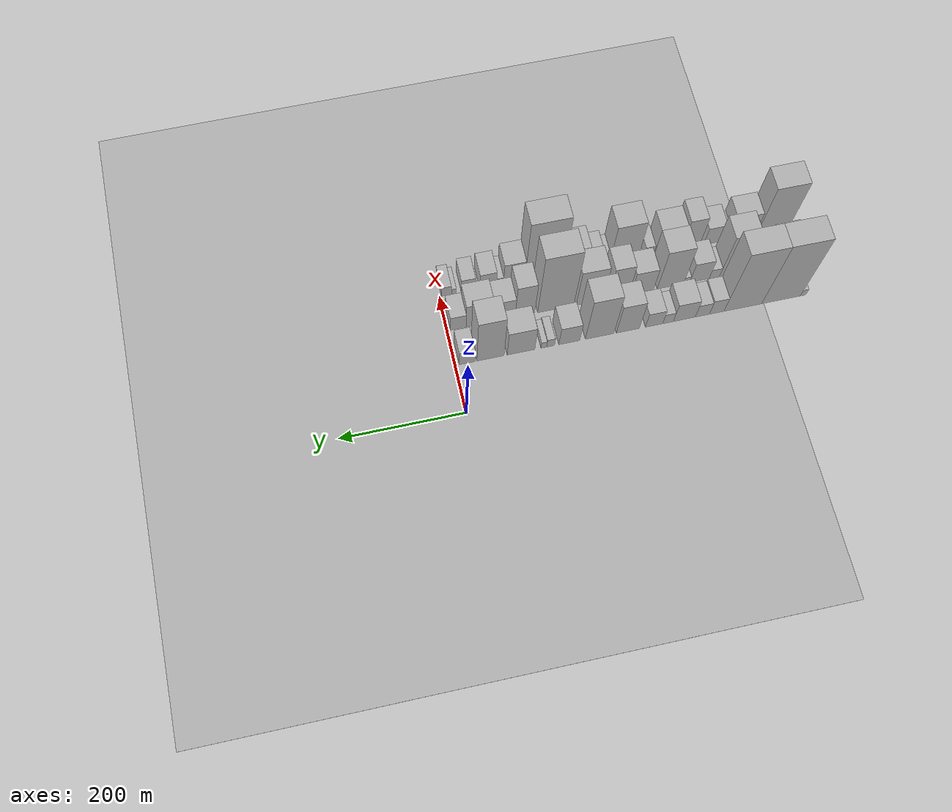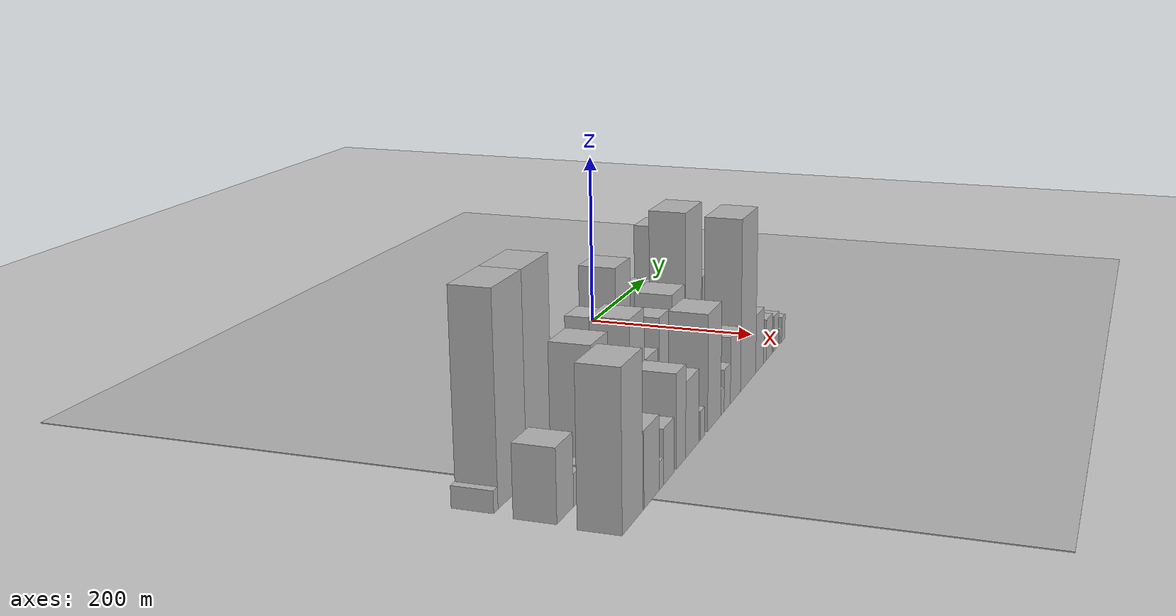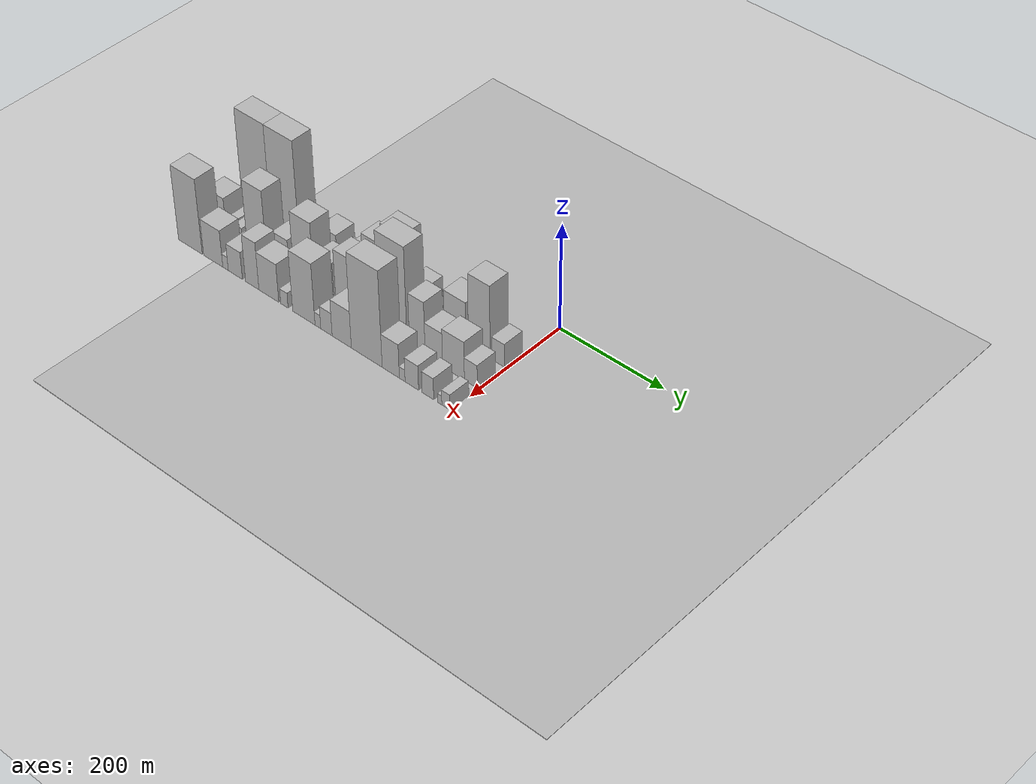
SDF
<sdf version="1.6">
 <world name="default">
  <include><name>ground_plane_1</name><uri>model://HANNAS_ground_plane</uri></include>
  <include>
   <name>ground_plane_2</name>
   <uri>model://HANNAS_ground_plane</uri>
   <pose>100 0 0  0 0 0</pose>
  </include>
  <model name="building_1">
   <static>1</static>
   <pose>100.0000 -565.3969 0 0.000000 0.000000 0.000000</pose>
   <link name="link">
    <pose>0 0 10.50 0 0 0</pose>
    <collision name="collision"><geometry><box><size>40.0000 9.2063 21.0000</size></box></geometry></collision>
    <visual name="visual">
     <cast_shadows>0</cast_shadows>
     <geometry><box><size>40.0000 9.2063 21.0000</size></box></geometry>
     <material>
      <script>
       <uri>model://HANNAS_wall/materials/scripts</uri>
       <uri>model://HANNAS_wall/materials/textures</uri>
       <name>vrc/HANNAS_wall</name>
      </script>
     </material>
    </visual>
   </link>
  </model>
  <model name="building_2">
   <static>1</static>
   <pose>100.0000 -528.7531 0 0.000000 0.000000 0.000000</pose>
   <link name="link">
    <pose>0 0 99.00 0 0 0</pose>
    <collision name="collision"><geometry><box><size>40.0000 64.0812 198.0000</size></box></geometry></collision>
    <visual name="visual">
     <cast_shadows>0</cast_shadows>
     <geometry><box><size>40.0000 64.0812 198.0000</size></box></geometry>
     <material>
      <script>
       <uri>model://HANNAS_wall/materials/scripts</uri>
       <uri>model://HANNAS_wall/materials/textures</uri>
       <name>vrc/HANNAS_wall</name>
      </script>
     </material>
    </visual>
   </link>
  </model>
  <model name="building_3">
   <static>1</static>
   <pose>100.0000 -465.5587 0 0.000000 0.000000 0.000000</pose>
   <link name="link">
    <pose>0 0 99.00 0 0 0</pose>
    <collision name="collision"><geometry><box><size>40.0000 62.3076 198.0000</size></box></geometry></collision>
    <visual name="visual">
     <cast_shadows>0</cast_shadows>
     <geometry><box><size>40.0000 62.3076 198.0000</size></box></geometry>
     <material>
      <script>
       <uri>model://HANNAS_wall/materials/scripts</uri>
       <uri>model://HANNAS_wall/materials/textures</uri>
       <name>vrc/HANNAS_wall</name>
      </script>
     </material>
    </visual>
   </link>
  </model>
  <model name="building_4">
   <static>1</static>
   <pose>100.0000 -422.2081 0 0.000000 0.000000 0.000000</pose>
   <link name="link">
    <pose>0 0 24.00 0 0 0</pose>
    <collision name="collision"><geometry><box><size>40.0000 24.3938 48.0000</size></box></geometry></collision>
    <visual name="visual">
     <cast_shadows>0</cast_shadows>
     <geometry><box><size>40.0000 24.3938 48.0000</size></box></geometry>
     <material>
      <script>
       <uri>model://HANNAS_wall/materials/scripts</uri>
       <uri>model://HANNAS_wall/materials/textures</uri>
       <name>vrc/HANNAS_wall</name>
      </script>
     </material>
    </visual>
   </link>
  </model>
  <model name="building_5">
   <static>1</static>
   <pose>100.0000 -398.4422 0 0.000000 0.000000 0.000000</pose>
   <link name="link">
    <pose>0 0 21.00 0 0 0</pose>
    <collision name="collision"><geometry><box><size>40.0000 23.1380 42.0000</size></box></geometry></collision>
    <visual name="visual">
     <cast_shadows>0</cast_shadows>
     <geometry><box><size>40.0000 23.1380 42.0000</size></box></geometry>
     <material>
      <script>
       <uri>model://HANNAS_wall/materials/scripts</uri>
       <uri>model://HANNAS_wall/materials/textures</uri>
       <name>vrc/HANNAS_wall</name>
      </script>
     </material>
    </visual>
   </link>
  </model>
  <model name="building_6">
   <static>1</static>
   <pose>100.0000 -368.9011 0 0.000000 0.000000 0.000000</pose>
   <link name="link">
    <pose>0 0 30.00 0 0 0</pose>
    <collision name="collision"><geometry><box><size>40.0000 35.9442 60.0000</size></box></geometry></collision>
    <visual name="visual">
     <cast_shadows>0</cast_shadows>
     <geometry><box><size>40.0000 35.9442 60.0000</size></box></geometry>
     <material>
      <script>
       <uri>model://HANNAS_wall/materials/scripts</uri>
       <uri>model://HANNAS_wall/materials/textures</uri>
       <name>vrc/HANNAS_wall</name>
      </script>
     </material>
    </visual>
   </link>
  </model>
  <model name="building_7">
   <static>1</static>
   <pose>100.0000 -342.2588 0 0.000000 0.000000 0.000000</pose>
   <link name="link">
    <pose>0 0 16.50 0 0 0</pose>
    <collision name="collision"><geometry><box><size>40.0000 17.3405 33.0000</size></box></geometry></collision>
    <visual name="visual">
     <cast_shadows>0</cast_shadows>
     <geometry><box><size>40.0000 17.3405 33.0000</size></box></geometry>
     <material>
      <script>
       <uri>model://HANNAS_wall/materials/scripts</uri>
       <uri>model://HANNAS_wall/materials/textures</uri>
       <name>vrc/HANNAS_wall</name>
      </script>
     </material>
    </visual>
   </link>
  </model>
  <model name="building_8">
   <static>1</static>
   <pose>100.0000 -319.4504 0 0.000000 0.000000 0.000000</pose>
   <link name="link">
    <pose>0 0 24.00 0 0 0</pose>
    <collision name="collision"><geometry><box><size>40.0000 28.2763 48.0000</size></box></geometry></collision>
    <visual name="visual">
     <cast_shadows>0</cast_shadows>
     <geometry><box><size>40.0000 28.2763 48.0000</size></box></geometry>
     <material>
      <script>
       <uri>model://HANNAS_wall/materials/scripts</uri>
       <uri>model://HANNAS_wall/materials/textures</uri>
       <name>vrc/HANNAS_wall</name>
      </script>
     </material>
    </visual>
   </link>
  </model>
  <model name="building_9">
   <static>1</static>
   <pose>100.0000 -276.6190 0 0.000000 0.000000 0.000000</pose>
   <link name="link">
    <pose>0 0 48.00 0 0 0</pose>
    <collision name="collision"><geometry><box><size>40.0000 37.3865 96.0000</size></box></geometry></collision>
    <visual name="visual">
     <cast_shadows>0</cast_shadows>
     <geometry><box><size>40.0000 37.3865 96.0000</size></box></geometry>
     <material>
      <script>
       <uri>model://HANNAS_wall/materials/scripts</uri>
       <uri>model://HANNAS_wall/materials/textures</uri>
       <name>vrc/HANNAS_wall</name>
      </script>
     </material>
    </visual>
   </link>
  </model>
  <model name="building_10">
   <static>1</static>
   <pose>100.0000 -230.8028 0 0.000000 0.000000 0.000000</pose>
   <link name="link">
    <pose>0 0 69.00 0 0 0</pose>
    <collision name="collision"><geometry><box><size>40.0000 46.2459 138.0000</size></box></geometry></collision>
    <visual name="visual">
     <cast_shadows>0</cast_shadows>
     <geometry><box><size>40.0000 46.2459 138.0000</size></box></geometry>
     <material>
      <script>
       <uri>model://HANNAS_wall/materials/scripts</uri>
       <uri>model://HANNAS_wall/materials/textures</uri>
       <name>vrc/HANNAS_wall</name>
      </script>
     </material>
    </visual>
   </link>
  </model>
  <model name="building_11">
   <static>1</static>
   <pose>100.0000 -181.7542 0 0.000000 0.000000 0.000000</pose>
   <link name="link">
    <pose>0 0 30.00 0 0 0</pose>
    <collision name="collision"><geometry><box><size>40.0000 33.8512 60.0000</size></box></geometry></collision>
    <visual name="visual">
     <cast_shadows>0</cast_shadows>
     <geometry><box><size>40.0000 33.8512 60.0000</size></box></geometry>
     <material>
      <script>
       <uri>model://HANNAS_wall/materials/scripts</uri>
       <uri>model://HANNAS_wall/materials/textures</uri>
       <name>vrc/HANNAS_wall</name>
      </script>
     </material>
    </visual>
   </link>
  </model>
  <model name="building_12">
   <static>1</static>
   <pose>100.0000 -151.5063 0 0.000000 0.000000 0.000000</pose>
   <link name="link">
    <pose>0 0 13.50 0 0 0</pose>
    <collision name="collision"><geometry><box><size>40.0000 12.6445 27.0000</size></box></geometry></collision>
    <visual name="visual">
     <cast_shadows>0</cast_shadows>
     <geometry><box><size>40.0000 12.6445 27.0000</size></box></geometry>
     <material>
      <script>
       <uri>model://HANNAS_wall/materials/scripts</uri>
       <uri>model://HANNAS_wall/materials/textures</uri>
       <name>vrc/HANNAS_wall</name>
      </script>
     </material>
    </visual>
   </link>
  </model>
  <model name="building_13">
   <static>1</static>
   <pose>100.0000 -140.6615 0 0.000000 0.000000 0.000000</pose>
   <link name="link">
    <pose>0 0 10.50 0 0 0</pose>
    <collision name="collision"><geometry><box><size>40.0000 9.0451 21.0000</size></box></geometry></collision>
    <visual name="visual">
     <cast_shadows>0</cast_shadows>
     <geometry><box><size>40.0000 9.0451 21.0000</size></box></geometry>
     <material>
      <script>
       <uri>model://HANNAS_wall/materials/scripts</uri>
       <uri>model://HANNAS_wall/materials/textures</uri>
       <name>vrc/HANNAS_wall</name>
      </script>
     </material>
    </visual>
   </link>
  </model>
  <model name="building_14">
   <static>1</static>
   <pose>100.0000 -103.9744 0 0.000000 0.000000 0.000000</pose>
   <link name="link">
    <pose>0 0 40.50 0 0 0</pose>
    <collision name="collision"><geometry><box><size>40.0000 44.3291 81.0000</size></box></geometry></collision>
    <visual name="visual">
     <cast_shadows>0</cast_shadows>
     <geometry><box><size>40.0000 44.3291 81.0000</size></box></geometry>
     <material>
      <script>
       <uri>model://HANNAS_wall/materials/scripts</uri>
       <uri>model://HANNAS_wall/materials/textures</uri>
       <name>vrc/HANNAS_wall</name>
      </script>
     </material>
    </visual>
   </link>
  </model>
  <model name="building_15">
   <static>1</static>
   <pose>100.0000 -55.1464 0 0.000000 0.000000 0.000000</pose>
   <link name="link">
    <pose>0 0 70.50 0 0 0</pose>
    <collision name="collision"><geometry><box><size>40.0000 43.3270 141.0000</size></box></geometry></collision>
    <visual name="visual">
     <cast_shadows>0</cast_shadows>
     <geometry><box><size>40.0000 43.3270 141.0000</size></box></geometry>
     <material>
      <script>
       <uri>model://HANNAS_wall/materials/scripts</uri>
       <uri>model://HANNAS_wall/materials/textures</uri>
       <name>vrc/HANNAS_wall</name>
      </script>
     </material>
    </visual>
   </link>
  </model>
  <model name="building_16">
   <static>1</static>
   <pose>100.0000 -17.9122 0 0.000000 0.000000 0.000000</pose>
   <link name="link">
    <pose>0 0 22.50 0 0 0</pose>
    <collision name="collision"><geometry><box><size>40.0000 25.1414 45.0000</size></box></geometry></collision>
    <visual name="visual">
     <cast_shadows>0</cast_shadows>
     <geometry><box><size>40.0000 25.1414 45.0000</size></box></geometry>
     <material>
      <script>
       <uri>model://HANNAS_wall/materials/scripts</uri>
       <uri>model://HANNAS_wall/materials/textures</uri>
       <name>vrc/HANNAS_wall</name>
      </script>
     </material>
    </visual>
   </link>
  </model>
  <model name="building_30">
   <static>1</static>
   <pose>160.0000 -555.3085 0 0.000000 0.000000 0.000000</pose>
   <link name="link">
    <pose>0 0 34.50 0 0 0</pose>
    <collision name="collision"><geometry><box><size>40.0000 39.3831 69.0000</size></box></geometry></collision>
    <visual name="visual">
     <cast_shadows>0</cast_shadows>
     <geometry><box><size>40.0000 39.3831 69.0000</size></box></geometry>
     <material>
      <script>
       <uri>model://HANNAS_wall/materials/scripts</uri>
       <uri>model://HANNAS_wall/materials/textures</uri>
       <name>vrc/HANNAS_wall</name>
      </script>
     </material>
    </visual>
   </link>
  </model>
  <model name="building_31">
   <static>1</static>
   <pose>160.0000 -527.1976 0 0.000000 0.000000 0.000000</pose>
   <link name="link">
    <pose>0 0 15.00 0 0 0</pose>
    <collision name="collision"><geometry><box><size>40.0000 16.8386 30.0000</size></box></geometry></collision>
    <visual name="visual">
     <cast_shadows>0</cast_shadows>
     <geometry><box><size>40.0000 16.8386 30.0000</size></box></geometry>
     <material>
      <script>
       <uri>model://HANNAS_wall/materials/scripts</uri>
       <uri>model://HANNAS_wall/materials/textures</uri>
       <name>vrc/HANNAS_wall</name>
      </script>
     </material>
    </visual>
   </link>
  </model>
  <model name="building_32">
   <static>1</static>
   <pose>160.0000 -507.0286 0 0.000000 0.000000 0.000000</pose>
   <link name="link">
    <pose>0 0 15.00 0 0 0</pose>
    <collision name="collision"><geometry><box><size>40.0000 17.4994 30.0000</size></box></geometry></collision>
    <visual name="visual">
     <cast_shadows>0</cast_shadows>
     <geometry><box><size>40.0000 17.4994 30.0000</size></box></geometry>
     <material>
      <script>
       <uri>model://HANNAS_wall/materials/scripts</uri>
       <uri>model://HANNAS_wall/materials/textures</uri>
       <name>vrc/HANNAS_wall</name>
      </script>
     </material>
    </visual>
   </link>
  </model>
  <model name="building_33">
   <static>1</static>
   <pose>160.0000 -466.6407 0 0.000000 0.000000 0.000000</pose>
   <link name="link">
    <pose>0 0 66.00 0 0 0</pose>
    <collision name="collision"><geometry><box><size>40.0000 43.2764 132.0000</size></box></geometry></collision>
    <visual name="visual">
     <cast_shadows>0</cast_shadows>
     <geometry><box><size>40.0000 43.2764 132.0000</size></box></geometry>
     <material>
      <script>
       <uri>model://HANNAS_wall/materials/scripts</uri>
       <uri>model://HANNAS_wall/materials/textures</uri>
       <name>vrc/HANNAS_wall</name>
      </script>
     </material>
    </visual>
   </link>
  </model>
  <model name="building_34">
   <static>1</static>
   <pose>160.0000 -436.3407 0 0.000000 0.000000 0.000000</pose>
   <link name="link">
    <pose>0 0 15.00 0 0 0</pose>
    <collision name="collision"><geometry><box><size>40.0000 17.3237 30.0000</size></box></geometry></collision>
    <visual name="visual">
     <cast_shadows>0</cast_shadows>
     <geometry><box><size>40.0000 17.3237 30.0000</size></box></geometry>
     <material>
      <script>
       <uri>model://HANNAS_wall/materials/scripts</uri>
       <uri>model://HANNAS_wall/materials/textures</uri>
       <name>vrc/HANNAS_wall</name>
      </script>
     </material>
    </visual>
   </link>
  </model>
  <model name="building_35">
   <static>1</static>
   <pose>160.0000 -411.4099 0 0.000000 0.000000 0.000000</pose>
   <link name="link">
    <pose>0 0 31.50 0 0 0</pose>
    <collision name="collision"><geometry><box><size>40.0000 32.5379 63.0000</size></box></geometry></collision>
    <visual name="visual">
     <cast_shadows>0</cast_shadows>
     <geometry><box><size>40.0000 32.5379 63.0000</size></box></geometry>
     <material>
      <script>
       <uri>model://HANNAS_wall/materials/scripts</uri>
       <uri>model://HANNAS_wall/materials/textures</uri>
       <name>vrc/HANNAS_wall</name>
      </script>
     </material>
    </visual>
   </link>
  </model>
  <model name="building_36">
   <static>1</static>
   <pose>160.0000 -390.1044 0 0.000000 0.000000 0.000000</pose>
   <link name="link">
    <pose>0 0 10.50 0 0 0</pose>
    <collision name="collision"><geometry><box><size>40.0000 10.0730 21.0000</size></box></geometry></collision>
    <visual name="visual">
     <cast_shadows>0</cast_shadows>
     <geometry><box><size>40.0000 10.0730 21.0000</size></box></geometry>
     <material>
      <script>
       <uri>model://HANNAS_wall/materials/scripts</uri>
       <uri>model://HANNAS_wall/materials/textures</uri>
       <name>vrc/HANNAS_wall</name>
      </script>
     </material>
    </visual>
   </link>
  </model>
  <model name="building_37">
   <static>1</static>
   <pose>160.0000 -363.1750 0 0.000000 0.000000 0.000000</pose>
   <link name="link">
    <pose>0 0 63.00 0 0 0</pose>
    <collision name="collision"><geometry><box><size>40.0000 43.7858 126.0000</size></box></geometry></collision>
    <visual name="visual">
     <cast_shadows>0</cast_shadows>
     <geometry><box><size>40.0000 43.7858 126.0000</size></box></geometry>
     <material>
      <script>
       <uri>model://HANNAS_wall/materials/scripts</uri>
       <uri>model://HANNAS_wall/materials/textures</uri>
       <name>vrc/HANNAS_wall</name>
      </script>
     </material>
    </visual>
   </link>
  </model>
  <model name="building_38">
   <static>1</static>
   <pose>160.0000 -316.8982 0 0.000000 0.000000 0.000000</pose>
   <link name="link">
    <pose>0 0 36.00 0 0 0</pose>
    <collision name="collision"><geometry><box><size>40.0000 36.7679 72.0000</size></box></geometry></collision>
    <visual name="visual">
     <cast_shadows>0</cast_shadows>
     <geometry><box><size>40.0000 36.7679 72.0000</size></box></geometry>
     <material>
      <script>
       <uri>model://HANNAS_wall/materials/scripts</uri>
       <uri>model://HANNAS_wall/materials/textures</uri>
       <name>vrc/HANNAS_wall</name>
      </script>
     </material>
    </visual>
   </link>
  </model>
  <model name="building_39">
   <static>1</static>
   <pose>160.0000 -278.0206 0 0.000000 0.000000 0.000000</pose>
   <link name="link">
    <pose>0 0 51.00 0 0 0</pose>
    <collision name="collision"><geometry><box><size>40.0000 32.9874 102.0000</size></box></geometry></collision>
    <visual name="visual">
     <cast_shadows>0</cast_shadows>
     <geometry><box><size>40.0000 32.9874 102.0000</size></box></geometry>
     <material>
      <script>
       <uri>model://HANNAS_wall/materials/scripts</uri>
       <uri>model://HANNAS_wall/materials/textures</uri>
       <name>vrc/HANNAS_wall</name>
      </script>
     </material>
    </visual>
   </link>
  </model>
  <model name="building_40">
   <static>1</static>
   <pose>160.0000 -230.3245 0 0.000000 0.000000 0.000000</pose>
   <link name="link">
    <pose>0 0 57.00 0 0 0</pose>
    <collision name="collision"><geometry><box><size>40.0000 44.4049 114.0000</size></box></geometry></collision>
    <visual name="visual">
     <cast_shadows>0</cast_shadows>
     <geometry><box><size>40.0000 44.4049 114.0000</size></box></geometry>
     <material>
      <script>
       <uri>model://HANNAS_wall/materials/scripts</uri>
       <uri>model://HANNAS_wall/materials/textures</uri>
       <name>vrc/HANNAS_wall</name>
      </script>
     </material>
    </visual>
   </link>
  </model>
  <model name="building_41">
   <static>1</static>
   <pose>160.0000 -174.7111 0 0.000000 0.000000 0.000000</pose>
   <link name="link">
    <pose>0 0 94.50 0 0 0</pose>
    <collision name="collision"><geometry><box><size>40.0000 58.8218 189.0000</size></box></geometry></collision>
    <visual name="visual">
     <cast_shadows>0</cast_shadows>
     <geometry><box><size>40.0000 58.8218 189.0000</size></box></geometry>
     <material>
      <script>
       <uri>model://HANNAS_wall/materials/scripts</uri>
       <uri>model://HANNAS_wall/materials/textures</uri>
       <name>vrc/HANNAS_wall</name>
      </script>
     </material>
    </visual>
   </link>
  </model>
  <model name="building_42">
   <static>1</static>
   <pose>160.0000 -124.4247 0 0.000000 0.000000 0.000000</pose>
   <link name="link">
    <pose>0 0 52.50 0 0 0</pose>
    <collision name="collision"><geometry><box><size>40.0000 31.7509 105.0000</size></box></geometry></collision>
    <visual name="visual">
     <cast_shadows>0</cast_shadows>
     <geometry><box><size>40.0000 31.7509 105.0000</size></box></geometry>
     <material>
      <script>
       <uri>model://HANNAS_wall/materials/scripts</uri>
       <uri>model://HANNAS_wall/materials/textures</uri>
       <name>vrc/HANNAS_wall</name>
      </script>
     </material>
    </visual>
   </link>
  </model>
  <model name="building_43">
   <static>1</static>
   <pose>160.0000 -90.9554 0 0.000000 0.000000 0.000000</pose>
   <link name="link">
    <pose>0 0 33.00 0 0 0</pose>
    <collision name="collision"><geometry><box><size>40.0000 35.1877 66.0000</size></box></geometry></collision>
    <visual name="visual">
     <cast_shadows>0</cast_shadows>
     <geometry><box><size>40.0000 35.1877 66.0000</size></box></geometry>
     <material>
      <script>
       <uri>model://HANNAS_wall/materials/scripts</uri>
       <uri>model://HANNAS_wall/materials/textures</uri>
       <name>vrc/HANNAS_wall</name>
      </script>
     </material>
    </visual>
   </link>
  </model>
  <model name="building_44">
   <static>1</static>
   <pose>160.0000 -51.5526 0 0.000000 0.000000 0.000000</pose>
   <link name="link">
    <pose>0 0 37.50 0 0 0</pose>
    <collision name="collision"><geometry><box><size>40.0000 43.6180 75.0000</size></box></geometry></collision>
    <visual name="visual">
     <cast_shadows>0</cast_shadows>
     <geometry><box><size>40.0000 43.6180 75.0000</size></box></geometry>
     <material>
      <script>
       <uri>model://HANNAS_wall/materials/scripts</uri>
       <uri>model://HANNAS_wall/materials/textures</uri>
       <name>vrc/HANNAS_wall</name>
      </script>
     </material>
    </visual>
   </link>
  </model>
  <model name="building_45">
   <static>1</static>
   <pose>160.0000 -16.9743 0 0.000000 0.000000 0.000000</pose>
   <link name="link">
    <pose>0 0 22.50 0 0 0</pose>
    <collision name="collision"><geometry><box><size>40.0000 25.5386 45.0000</size></box></geometry></collision>
    <visual name="visual">
     <cast_shadows>0</cast_shadows>
     <geometry><box><size>40.0000 25.5386 45.0000</size></box></geometry>
     <material>
      <script>
       <uri>model://HANNAS_wall/materials/scripts</uri>
       <uri>model://HANNAS_wall/materials/textures</uri>
       <name>vrc/HANNAS_wall</name>
      </script>
     </material>
    </visual>
   </link>
  </model>
  <model name="building_65">
   <static>1</static>
   <pose>220.0000 -552.9016 0 0.000000 0.000000 0.000000</pose>
   <link name="link">
    <pose>0 0 73.50 0 0 0</pose>
    <collision name="collision"><geometry><box><size>40.0000 54.1969 147.0000</size></box></geometry></collision>
    <visual name="visual">
     <cast_shadows>0</cast_shadows>
     <geometry><box><size>40.0000 54.1969 147.0000</size></box></geometry>
     <material>
      <script>
       <uri>model://HANNAS_wall/materials/scripts</uri>
       <uri>model://HANNAS_wall/materials/textures</uri>
       <name>vrc/HANNAS_wall</name>
      </script>
     </material>
    </visual>
   </link>
  </model>
  <model name="building_66">
   <static>1</static>
   <pose>220.0000 -501.2773 0 0.000000 0.000000 0.000000</pose>
   <link name="link">
    <pose>0 0 36.00 0 0 0</pose>
    <collision name="collision"><geometry><box><size>40.0000 43.0515 72.0000</size></box></geometry></collision>
    <visual name="visual">
     <cast_shadows>0</cast_shadows>
     <geometry><box><size>40.0000 43.0515 72.0000</size></box></geometry>
     <material>
      <script>
       <uri>model://HANNAS_wall/materials/scripts</uri>
       <uri>model://HANNAS_wall/materials/textures</uri>
       <name>vrc/HANNAS_wall</name>
      </script>
     </material>
    </visual>
   </link>
  </model>
  <model name="building_67">
   <static>1</static>
   <pose>220.0000 -473.5905 0 0.000000 0.000000 0.000000</pose>
   <link name="link">
    <pose>0 0 13.50 0 0 0</pose>
    <collision name="collision"><geometry><box><size>40.0000 12.3221 27.0000</size></box></geometry></collision>
    <visual name="visual">
     <cast_shadows>0</cast_shadows>
     <geometry><box><size>40.0000 12.3221 27.0000</size></box></geometry>
     <material>
      <script>
       <uri>model://HANNAS_wall/materials/scripts</uri>
       <uri>model://HANNAS_wall/materials/textures</uri>
       <name>vrc/HANNAS_wall</name>
      </script>
     </material>
    </visual>
   </link>
  </model>
  <model name="building_68">
   <static>1</static>
   <pose>220.0000 -451.7284 0 0.000000 0.000000 0.000000</pose>
   <link name="link">
    <pose>0 0 27.00 0 0 0</pose>
    <collision name="collision"><geometry><box><size>40.0000 31.4021 54.0000</size></box></geometry></collision>
    <visual name="visual">
     <cast_shadows>0</cast_shadows>
     <geometry><box><size>40.0000 31.4021 54.0000</size></box></geometry>
     <material>
      <script>
       <uri>model://HANNAS_wall/materials/scripts</uri>
       <uri>model://HANNAS_wall/materials/textures</uri>
       <name>vrc/HANNAS_wall</name>
      </script>
     </material>
    </visual>
   </link>
  </model>
  <model name="building_69">
   <static>1</static>
   <pose>220.0000 -414.3546 0 0.000000 0.000000 0.000000</pose>
   <link name="link">
    <pose>0 0 46.50 0 0 0</pose>
    <collision name="collision"><geometry><box><size>40.0000 29.3456 93.0000</size></box></geometry></collision>
    <visual name="visual">
     <cast_shadows>0</cast_shadows>
     <geometry><box><size>40.0000 29.3456 93.0000</size></box></geometry>
     <material>
      <script>
       <uri>model://HANNAS_wall/materials/scripts</uri>
       <uri>model://HANNAS_wall/materials/textures</uri>
       <name>vrc/HANNAS_wall</name>
      </script>
     </material>
    </visual>
   </link>
  </model>
  <model name="building_70">
   <static>1</static>
   <pose>220.0000 -378.0137 0 0.000000 0.000000 0.000000</pose>
   <link name="link">
    <pose>0 0 37.50 0 0 0</pose>
    <collision name="collision"><geometry><box><size>40.0000 43.3363 75.0000</size></box></geometry></collision>
    <visual name="visual">
     <cast_shadows>0</cast_shadows>
     <geometry><box><size>40.0000 43.3363 75.0000</size></box></geometry>
     <material>
      <script>
       <uri>model://HANNAS_wall/materials/scripts</uri>
       <uri>model://HANNAS_wall/materials/textures</uri>
       <name>vrc/HANNAS_wall</name>
      </script>
     </material>
    </visual>
   </link>
  </model>
  <model name="building_71">
   <static>1</static>
   <pose>220.0000 -344.3422 0 0.000000 0.000000 0.000000</pose>
   <link name="link">
    <pose>0 0 15.00 0 0 0</pose>
    <collision name="collision"><geometry><box><size>40.0000 16.0066 30.0000</size></box></geometry></collision>
    <visual name="visual">
     <cast_shadows>0</cast_shadows>
     <geometry><box><size>40.0000 16.0066 30.0000</size></box></geometry>
     <material>
      <script>
       <uri>model://HANNAS_wall/materials/scripts</uri>
       <uri>model://HANNAS_wall/materials/textures</uri>
       <name>vrc/HANNAS_wall</name>
      </script>
     </material>
    </visual>
   </link>
  </model>
  <model name="building_72">
   <static>1</static>
   <pose>220.0000 -302.5237 0 0.000000 0.000000 0.000000</pose>
   <link name="link">
    <pose>0 0 60.00 0 0 0</pose>
    <collision name="collision"><geometry><box><size>40.0000 47.6303 120.0000</size></box></geometry></collision>
    <visual name="visual">
     <cast_shadows>0</cast_shadows>
     <geometry><box><size>40.0000 47.6303 120.0000</size></box></geometry>
     <material>
      <script>
       <uri>model://HANNAS_wall/materials/scripts</uri>
       <uri>model://HANNAS_wall/materials/textures</uri>
       <name>vrc/HANNAS_wall</name>
      </script>
     </material>
    </visual>
   </link>
  </model>
  <model name="building_73">
   <static>1</static>
   <pose>220.0000 -272.6100 0 0.000000 0.000000 0.000000</pose>
   <link name="link">
    <pose>0 0 13.50 0 0 0</pose>
    <collision name="collision"><geometry><box><size>40.0000 12.1972 27.0000</size></box></geometry></collision>
    <visual name="visual">
     <cast_shadows>0</cast_shadows>
     <geometry><box><size>40.0000 12.1972 27.0000</size></box></geometry>
     <material>
      <script>
       <uri>model://HANNAS_wall/materials/scripts</uri>
       <uri>model://HANNAS_wall/materials/textures</uri>
       <name>vrc/HANNAS_wall</name>
      </script>
     </material>
    </visual>
   </link>
  </model>
  <model name="building_74">
   <static>1</static>
   <pose>220.0000 -254.5271 0 0.000000 0.000000 0.000000</pose>
   <link name="link">
    <pose>0 0 22.50 0 0 0</pose>
    <collision name="collision"><geometry><box><size>40.0000 23.9684 45.0000</size></box></geometry></collision>
    <visual name="visual">
     <cast_shadows>0</cast_shadows>
     <geometry><box><size>40.0000 23.9684 45.0000</size></box></geometry>
     <material>
      <script>
       <uri>model://HANNAS_wall/materials/scripts</uri>
       <uri>model://HANNAS_wall/materials/textures</uri>
       <name>vrc/HANNAS_wall</name>
      </script>
     </material>
    </visual>
   </link>
  </model>
  <model name="building_75">
   <static>1</static>
   <pose>220.0000 -222.4716 0 0.000000 0.000000 0.000000</pose>
   <link name="link">
    <pose>0 0 36.00 0 0 0</pose>
    <collision name="collision"><geometry><box><size>40.0000 40.1427 72.0000</size></box></geometry></collision>
    <visual name="visual">
     <cast_shadows>0</cast_shadows>
     <geometry><box><size>40.0000 40.1427 72.0000</size></box></geometry>
     <material>
      <script>
       <uri>model://HANNAS_wall/materials/scripts</uri>
       <uri>model://HANNAS_wall/materials/textures</uri>
       <name>vrc/HANNAS_wall</name>
      </script>
     </material>
    </visual>
   </link>
  </model>
  <model name="building_76">
   <static>1</static>
   <pose>220.0000 -170.5790 0 0.000000 0.000000 0.000000</pose>
   <link name="link">
    <pose>0 0 93.00 0 0 0</pose>
    <collision name="collision"><geometry><box><size>40.0000 63.6424 186.0000</size></box></geometry></collision>
    <visual name="visual">
     <cast_shadows>0</cast_shadows>
     <geometry><box><size>40.0000 63.6424 186.0000</size></box></geometry>
     <material>
      <script>
       <uri>model://HANNAS_wall/materials/scripts</uri>
       <uri>model://HANNAS_wall/materials/textures</uri>
       <name>vrc/HANNAS_wall</name>
      </script>
     </material>
    </visual>
   </link>
  </model>
  <model name="building_77">
   <static>1</static>
   <pose>220.0000 -121.2449 0 0.000000 0.000000 0.000000</pose>
   <link name="link">
    <pose>0 0 33.00 0 0 0</pose>
    <collision name="collision"><geometry><box><size>40.0000 35.0258 66.0000</size></box></geometry></collision>
    <visual name="visual">
     <cast_shadows>0</cast_shadows>
     <geometry><box><size>40.0000 35.0258 66.0000</size></box></geometry>
     <material>
      <script>
       <uri>model://HANNAS_wall/materials/scripts</uri>
       <uri>model://HANNAS_wall/materials/textures</uri>
       <name>vrc/HANNAS_wall</name>
      </script>
     </material>
    </visual>
   </link>
  </model>
  <model name="building_78">
   <static>1</static>
   <pose>220.0000 -97.9815 0 0.000000 0.000000 0.000000</pose>
   <link name="link">
    <pose>0 0 12.00 0 0 0</pose>
    <collision name="collision"><geometry><box><size>40.0000 11.5011 24.0000</size></box></geometry></collision>
    <visual name="visual">
     <cast_shadows>0</cast_shadows>
     <geometry><box><size>40.0000 11.5011 24.0000</size></box></geometry>
     <material>
      <script>
       <uri>model://HANNAS_wall/materials/scripts</uri>
       <uri>model://HANNAS_wall/materials/textures</uri>
       <name>vrc/HANNAS_wall</name>
      </script>
     </material>
    </visual>
   </link>
  </model>
  <model name="building_79">
   <static>1</static>
   <pose>220.0000 -78.6163 0 0.000000 0.000000 0.000000</pose>
   <link name="link">
    <pose>0 0 24.00 0 0 0</pose>
    <collision name="collision"><geometry><box><size>40.0000 27.2291 48.0000</size></box></geometry></collision>
    <visual name="visual">
     <cast_shadows>0</cast_shadows>
     <geometry><box><size>40.0000 27.2291 48.0000</size></box></geometry>
     <material>
      <script>
       <uri>model://HANNAS_wall/materials/scripts</uri>
       <uri>model://HANNAS_wall/materials/textures</uri>
       <name>vrc/HANNAS_wall</name>
      </script>
     </material>
    </visual>
   </link>
  </model>
  <model name="building_80">
   <static>1</static>
   <pose>220.0000 -46.4126 0 0.000000 0.000000 0.000000</pose>
   <link name="link">
    <pose>0 0 21.00 0 0 0</pose>
    <collision name="collision"><geometry><box><size>40.0000 23.1784 42.0000</size></box></geometry></collision>
    <visual name="visual">
     <cast_shadows>0</cast_shadows>
     <geometry><box><size>40.0000 23.1784 42.0000</size></box></geometry>
     <material>
      <script>
       <uri>model://HANNAS_wall/materials/scripts</uri>
       <uri>model://HANNAS_wall/materials/textures</uri>
       <name>vrc/HANNAS_wall</name>
      </script>
     </material>
    </visual>
   </link>
  </model>
  <model name="building_81">
   <static>1</static>
   <pose>220.0000 -22.8001 0 0.000000 0.000000 0.000000</pose>
   <link name="link">
    <pose>0 0 9.00 0 0 0</pose>
    <collision name="collision"><geometry><box><size>40.0000 8.0466 18.0000</size></box></geometry></collision>
    <visual name="visual">
     <cast_shadows>0</cast_shadows>
     <geometry><box><size>40.0000 8.0466 18.0000</size></box></geometry>
     <material>
      <script>
       <uri>model://HANNAS_wall/materials/scripts</uri>
       <uri>model://HANNAS_wall/materials/textures</uri>
       <name>vrc/HANNAS_wall</name>
      </script>
     </material>
    </visual>
   </link>
  </model>
  <model name="building_82">
   <static>1</static>
   <pose>220.0000 -10.5959 0 0.000000 0.000000 0.000000</pose>
   <link name="link">
    <pose>0 0 15.00 0 0 0</pose>
    <collision name="collision"><geometry><box><size>40.0000 16.3619 30.0000</size></box></geometry></collision>
    <visual name="visual">
     <cast_shadows>0</cast_shadows>
     <geometry><box><size>40.0000 16.3619 30.0000</size></box></geometry>
     <material>
      <script>
       <uri>model://HANNAS_wall/materials/scripts</uri>
       <uri>model://HANNAS_wall/materials/textures</uri>
       <name>vrc/HANNAS_wall</name>
      </script>
     </material>
    </visual>
   </link>
  </model>
 </world>
</sdf>
